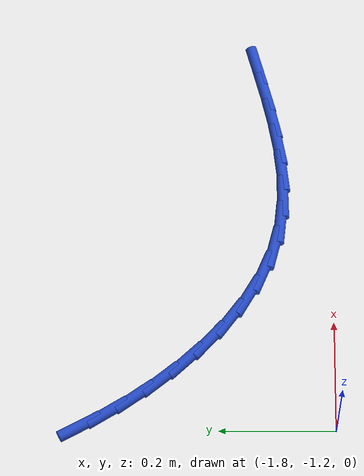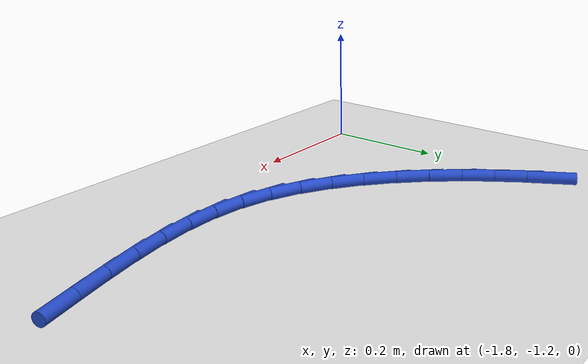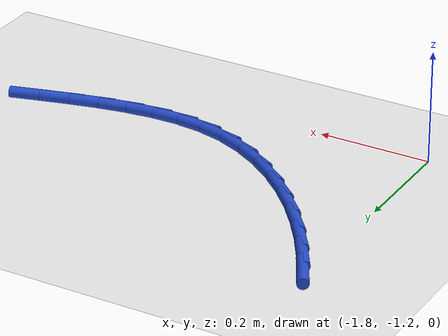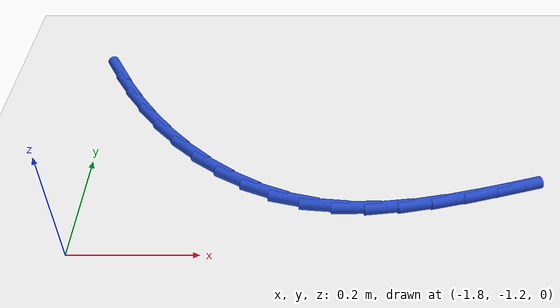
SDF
<sdf version="1.6">
 <world name="default">
  <model name="ground_plane">
   <static>1</static>
   <link name="link">
    <collision name="collision">
     <geometry><plane><normal>0 0 1</normal><size>100 100</size></plane></geometry>
     <surface><friction><ode><mu>100</mu><mu2>50</mu2></ode></friction></surface>
    </collision>
    <visual name="visual">
     <cast_shadows>0</cast_shadows>
     <geometry><plane><normal>0 0 1</normal><size>100 100</size></plane></geometry>
     <material>
      <script><uri>file://media/materials/scripts/gazebo.material</uri><name>Gazebo/WhiteGlow</name></script>
     </material>
    </visual>
   </link>
  </model>
  <model name="line">
   <link name="link_82">
    <pose>-1.7958113503994224 -0.7646258919184148 0.01 0 1.57 -1.068575997023275</pose>
    <collision name="collision">
     <geometry><cylinder><radius>0.01</radius><length>0.08</length></cylinder></geometry>
    </collision>
    <visual name="visual">
     <material>
      <script><name>Gazebo/Blue</name><uri>file://media/materials/scripts/gazebo.material</uri></script>
     </material>
     <geometry><cylinder><radius>0.01</radius><length>0.08</length></cylinder></geometry>
    </visual>
   </link>
   <link name="link_83">
    <pose>-1.7704161551159348 -0.8108671612045008 0.01 0 1.57 -1.0112619790115254</pose>
    <collision name="collision">
     <geometry><cylinder><radius>0.01</radius><length>0.08</length></cylinder></geometry>
    </collision>
    <visual name="visual">
     <material>
      <script><name>Gazebo/Blue</name><uri>file://media/materials/scripts/gazebo.material</uri></script>
     </material>
     <geometry><cylinder><radius>0.01</radius><length>0.08</length></cylinder></geometry>
    </visual>
   </link>
   <link name="link_84">
    <pose>-1.7418507372443337 -0.8564768856639219 0.01 0 1.57 -0.9496186308729111</pose>
    <collision name="collision">
     <geometry><cylinder><radius>0.01</radius><length>0.08</length></cylinder></geometry>
    </collision>
    <visual name="visual">
     <material>
      <script><name>Gazebo/Blue</name><uri>file://media/materials/scripts/gazebo.material</uri></script>
     </material>
     <geometry><cylinder><radius>0.01</radius><length>0.08</length></cylinder></geometry>
    </visual>
   </link>
   <link name="link_85">
    <pose>-1.7099601779422988 -0.9010361630177597 0.01 0 1.57 -0.8834790064020384</pose>
    <collision name="collision">
     <geometry><cylinder><radius>0.01</radius><length>0.08</length></cylinder></geometry>
    </collision>
    <visual name="visual">
     <material>
      <script><name>Gazebo/Blue</name><uri>file://media/materials/scripts/gazebo.material</uri></script>
     </material>
     <geometry><cylinder><radius>0.01</radius><length>0.08</length></cylinder></geometry>
    </visual>
   </link>
   <link name="link_86">
    <pose>-1.67496708994408 -0.9436671981442791 0.01 0 1.57 -0.8104671774591945</pose>
    <collision name="collision">
     <geometry><cylinder><radius>0.01</radius><length>0.08</length></cylinder></geometry>
    </collision>
    <visual name="visual">
     <material>
      <script><name>Gazebo/Blue</name><uri>file://media/materials/scripts/gazebo.material</uri></script>
     </material>
     <geometry><cylinder><radius>0.01</radius><length>0.08</length></cylinder></geometry>
    </visual>
   </link>
   <link name="link_87">
    <pose>-1.6371176760512822 -0.9834635219942075 0.01 0 1.57 -0.7278988903649503</pose>
    <collision name="collision">
     <geometry><cylinder><radius>0.01</radius><length>0.08</length></cylinder></geometry>
    </collision>
    <visual name="visual">
     <material>
      <script><name>Gazebo/Blue</name><uri>file://media/materials/scripts/gazebo.material</uri></script>
     </material>
     <geometry><cylinder><radius>0.01</radius><length>0.08</length></cylinder></geometry>
    </visual>
   </link>
   <link name="link_88">
    <pose>-1.5966581390655088 -1.0195186655182733 0.01 0 1.57 -0.6328038869330737</pose>
    <collision name="collision">
     <geometry><cylinder><radius>0.01</radius><length>0.08</length></cylinder></geometry>
    </collision>
    <visual name="visual">
     <material>
      <script><name>Gazebo/Blue</name><uri>file://media/materials/scripts/gazebo.material</uri></script>
     </material>
     <geometry><cylinder><radius>0.01</radius><length>0.08</length></cylinder></geometry>
    </visual>
   </link>
   <link name="link_89">
    <pose>-1.5538346817883637 -1.0509261596672053 0.01 0 1.57 -0.5220382736739304</pose>
    <collision name="collision">
     <geometry><cylinder><radius>0.01</radius><length>0.08</length></cylinder></geometry>
    </collision>
    <visual name="visual">
     <material>
      <script><name>Gazebo/Blue</name><uri>file://media/materials/scripts/gazebo.material</uri></script>
     </material>
     <geometry><cylinder><radius>0.01</radius><length>0.08</length></cylinder></geometry>
    </visual>
   </link>
   <link name="link_90">
    <pose>-1.508893507021451 -1.0767795353917313 0.01 0 1.57 -0.39274169941069925</pose>
    <collision name="collision">
     <geometry><cylinder><radius>0.01</radius><length>0.08</length></cylinder></geometry>
    </collision>
    <visual name="visual">
     <material>
      <script><name>Gazebo/Blue</name><uri>file://media/materials/scripts/gazebo.material</uri></script>
     </material>
     <geometry><cylinder><radius>0.01</radius><length>0.08</length></cylinder></geometry>
    </visual>
   </link>
   <link name="link_91">
    <pose>-1.462080817566373 -1.0961723236425795 0.01 0 1.57 -0.24422476484252126</pose>
    <collision name="collision">
     <geometry><cylinder><radius>0.01</radius><length>0.08</length></cylinder></geometry>
    </collision>
    <visual name="visual">
     <material>
      <script><name>Gazebo/Blue</name><uri>file://media/materials/scripts/gazebo.material</uri></script>
     </material>
     <geometry><cylinder><radius>0.01</radius><length>0.08</length></cylinder></geometry>
    </visual>
   </link>
   <link name="link_92">
    <pose>-1.4136427585303804 -1.1082430460004051 0.01 0 1.57 -0.09758852617402533</pose>
    <collision name="collision">
     <geometry><cylinder><radius>0.01</radius><length>0.08</length></cylinder></geometry>
    </collision>
    <visual name="visual">
     <material>
      <script><name>Gazebo/Blue</name><uri>file://media/materials/scripts/gazebo.material</uri></script>
     </material>
     <geometry><cylinder><radius>0.01</radius><length>0.08</length></cylinder></geometry>
    </visual>
   </link>
   <link name="link_93">
    <pose>-1.3638242054373295 -1.1131202577537591 0.01 0 1.57 0.023976196964166488</pose>
    <collision name="collision">
     <geometry><cylinder><radius>0.01</radius><length>0.08</length></cylinder></geometry>
    </collision>
    <visual name="visual">
     <material>
      <script><name>Gazebo/Blue</name><uri>file://media/materials/scripts/gazebo.material</uri></script>
     </material>
     <geometry><cylinder><radius>0.01</radius><length>0.08</length></cylinder></geometry>
    </visual>
   </link>
   <link name="link_94">
    <pose>-1.3128687953137925 -1.1118983066458081 0.01 0 1.57 0.11875928758174172</pose>
    <collision name="collision">
     <geometry><cylinder><radius>0.01</radius><length>0.08</length></cylinder></geometry>
    </collision>
    <visual name="visual">
     <material>
      <script><name>Gazebo/Blue</name><uri>file://media/materials/scripts/gazebo.material</uri></script>
     </material>
     <geometry><cylinder><radius>0.01</radius><length>0.08</length></cylinder></geometry>
    </visual>
   </link>
   <link name="link_95">
    <pose>-1.2610201137104078 -1.105711681864964 0.01 0 1.57 0.18853617844216491</pose>
    <collision name="collision">
     <geometry><cylinder><radius>0.01</radius><length>0.08</length></cylinder></geometry>
    </collision>
    <visual name="visual">
     <material>
      <script><name>Gazebo/Blue</name><uri>file://media/materials/scripts/gazebo.material</uri></script>
     </material>
     <geometry><cylinder><radius>0.01</radius><length>0.08</length></cylinder></geometry>
    </visual>
   </link>
   <link name="link_96">
    <pose>-1.2085217461778097 -1.0956948725996372 0.01 0 1.57 0.23582077614532013</pose>
    <collision name="collision">
     <geometry><cylinder><radius>0.01</radius><length>0.08</length></cylinder></geometry>
    </collision>
    <visual name="visual">
     <material>
      <script><name>Gazebo/Blue</name><uri>file://media/materials/scripts/gazebo.material</uri></script>
     </material>
     <geometry><cylinder><radius>0.01</radius><length>0.08</length></cylinder></geometry>
    </visual>
   </link>
   <link name="link_97">
    <pose>-1.1556172782666354 -1.0829823680382389 0.01 0 1.57 0.2627565672642005</pose>
    <collision name="collision">
     <geometry><cylinder><radius>0.01</radius><length>0.08</length></cylinder></geometry>
    </collision>
    <visual name="visual">
     <material>
      <script><name>Gazebo/Blue</name><uri>file://media/materials/scripts/gazebo.material</uri></script>
     </material>
     <geometry><cylinder><radius>0.01</radius><length>0.08</length></cylinder></geometry>
    </visual>
   </link>
   <link name="link_98">
    <pose>-1.102550295527521 -1.0687086573691797 0.01 0 1.57 0.27064561717317465</pose>
    <collision name="collision">
     <geometry><cylinder><radius>0.01</radius><length>0.08</length></cylinder></geometry>
    </collision>
    <visual name="visual">
     <material>
      <script><name>Gazebo/Blue</name><uri>file://media/materials/scripts/gazebo.material</uri></script>
     </material>
     <geometry><cylinder><radius>0.01</radius><length>0.08</length></cylinder></geometry>
    </visual>
   </link>
  </model>
 </world>
</sdf>
